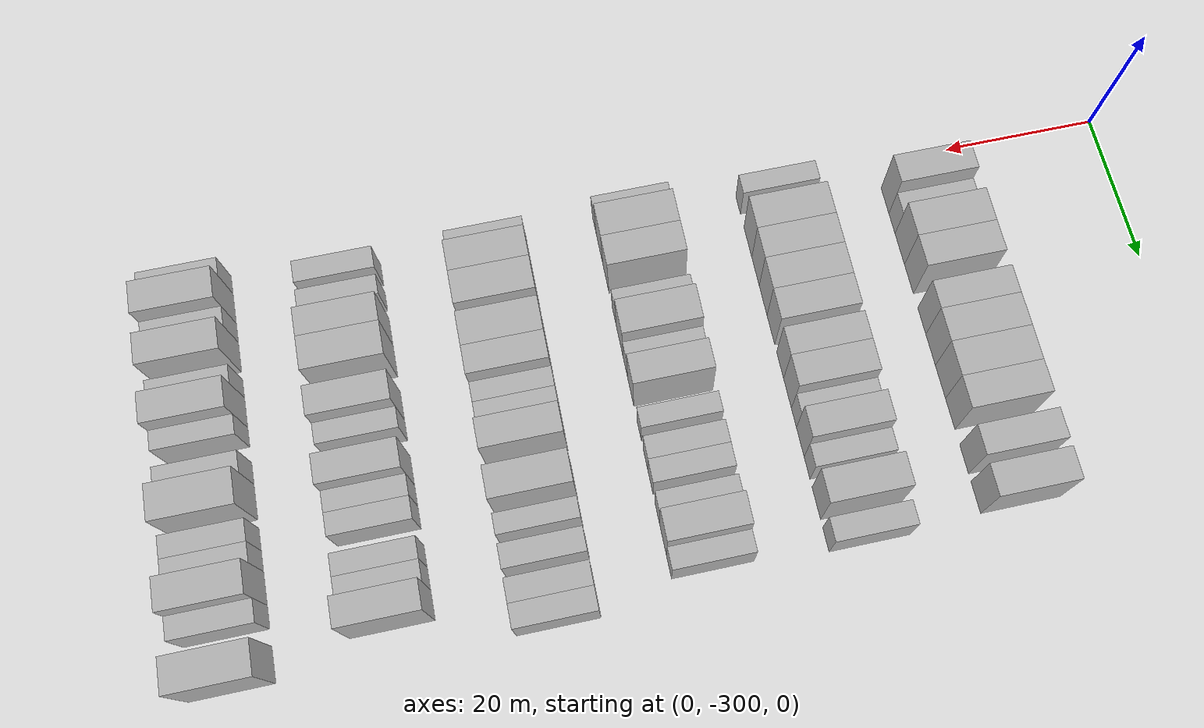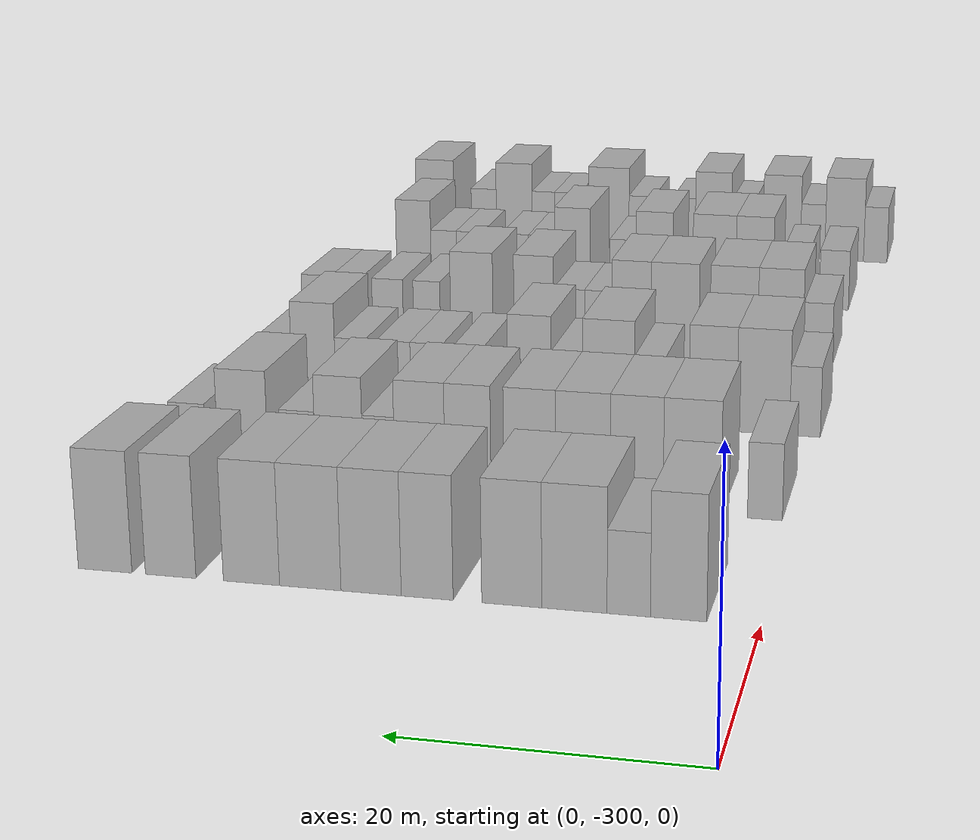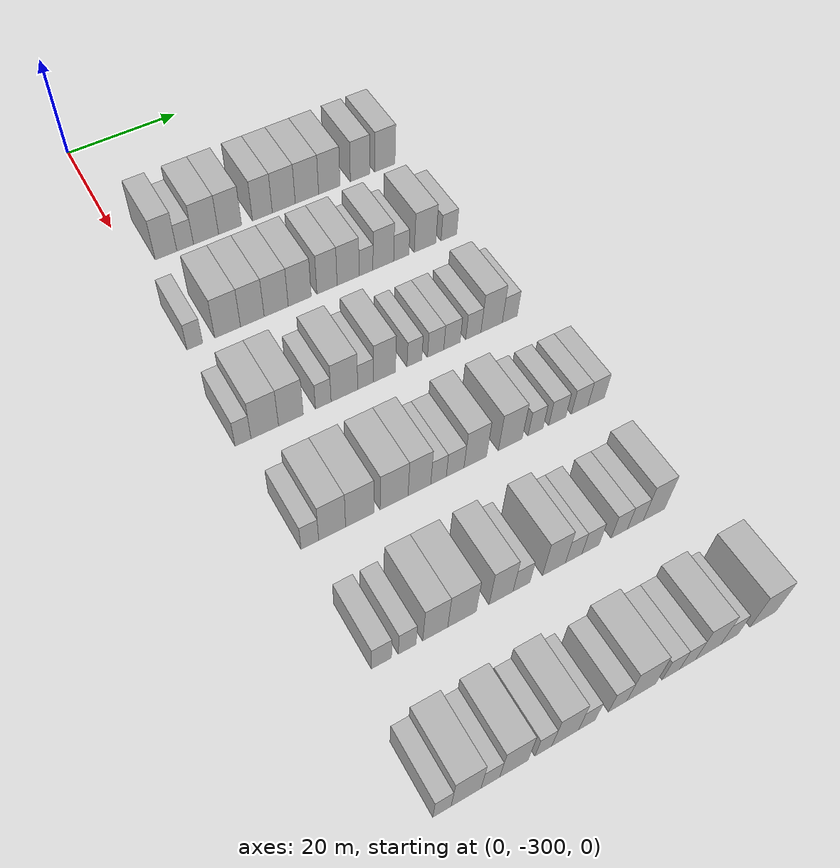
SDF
<sdf version="1.6">
 <world name="default">
  <model name="building_11">
   <static>1</static>
   <pose>25.0000 -294.4763 0 0.000000 0.000000 0.000000</pose>
   <link name="link">
    <pose>0 0 4.50 0 0 0</pose>
    <collision name="collision"><geometry><box><size>10.0000 3.7892 9.0000</size></box></geometry></collision>
    <visual name="visual">
     <cast_shadows>0</cast_shadows>
     <geometry><box><size>10.0000 3.7892 9.0000</size></box></geometry>
     <material>
      <script>
       <uri>model://HANNAS_wall/materials/scripts</uri>
       <uri>model://HANNAS_wall/materials/textures</uri>
       <name>vrc/HANNAS_wall</name>
      </script>
     </material>
    </visual>
   </link>
  </model>
  <model name="building_12">
   <static>1</static>
   <pose>25.0000 -291.1139 0 0.000000 0.000000 0.000000</pose>
   <link name="link">
    <pose>0 0 3.00 0 0 0</pose>
    <collision name="collision"><geometry><box><size>10.0000 2.9355 6.0000</size></box></geometry></collision>
    <visual name="visual">
     <cast_shadows>0</cast_shadows>
     <geometry><box><size>10.0000 2.9355 6.0000</size></box></geometry>
     <material>
      <script>
       <uri>model://HANNAS_wall/materials/scripts</uri>
       <uri>model://HANNAS_wall/materials/textures</uri>
       <name>vrc/HANNAS_wall</name>
      </script>
     </material>
    </visual>
   </link>
  </model>
  <model name="building_13">
   <static>1</static>
   <pose>25.0000 -287.4135 0 0.000000 0.000000 0.000000</pose>
   <link name="link">
    <pose>0 0 4.50 0 0 0</pose>
    <collision name="collision"><geometry><box><size>10.0000 4.4653 9.0000</size></box></geometry></collision>
    <visual name="visual">
     <cast_shadows>0</cast_shadows>
     <geometry><box><size>10.0000 4.4653 9.0000</size></box></geometry>
     <material>
      <script>
       <uri>model://HANNAS_wall/materials/scripts</uri>
       <uri>model://HANNAS_wall/materials/textures</uri>
       <name>vrc/HANNAS_wall</name>
      </script>
     </material>
    </visual>
   </link>
  </model>
  <model name="building_14">
   <static>1</static>
   <pose>25.0000 -283.1063 0 0.000000 0.000000 0.000000</pose>
   <link name="link">
    <pose>0 0 4.50 0 0 0</pose>
    <collision name="collision"><geometry><box><size>10.0000 4.1491 9.0000</size></box></geometry></collision>
    <visual name="visual">
     <cast_shadows>0</cast_shadows>
     <geometry><box><size>10.0000 4.1491 9.0000</size></box></geometry>
     <material>
      <script>
       <uri>model://HANNAS_wall/materials/scripts</uri>
       <uri>model://HANNAS_wall/materials/textures</uri>
       <name>vrc/HANNAS_wall</name>
      </script>
     </material>
    </visual>
   </link>
  </model>
  <model name="building_15">
   <static>1</static>
   <pose>25.0000 -277.2079 0 0.000000 0.000000 0.000000</pose>
   <link name="link">
    <pose>0 0 4.50 0 0 0</pose>
    <collision name="collision"><geometry><box><size>10.0000 3.6478 9.0000</size></box></geometry></collision>
    <visual name="visual">
     <cast_shadows>0</cast_shadows>
     <geometry><box><size>10.0000 3.6478 9.0000</size></box></geometry>
     <material>
      <script>
       <uri>model://HANNAS_wall/materials/scripts</uri>
       <uri>model://HANNAS_wall/materials/textures</uri>
       <name>vrc/HANNAS_wall</name>
      </script>
     </material>
    </visual>
   </link>
  </model>
  <model name="building_16">
   <static>1</static>
   <pose>25.0000 -273.2467 0 0.000000 0.000000 0.000000</pose>
   <link name="link">
    <pose>0 0 4.50 0 0 0</pose>
    <collision name="collision"><geometry><box><size>10.0000 4.2746 9.0000</size></box></geometry></collision>
    <visual name="visual">
     <cast_shadows>0</cast_shadows>
     <geometry><box><size>10.0000 4.2746 9.0000</size></box></geometry>
     <material>
      <script>
       <uri>model://HANNAS_wall/materials/scripts</uri>
       <uri>model://HANNAS_wall/materials/textures</uri>
       <name>vrc/HANNAS_wall</name>
      </script>
     </material>
    </visual>
   </link>
  </model>
  <model name="building_17">
   <static>1</static>
   <pose>25.0000 -268.9025 0 0.000000 0.000000 0.000000</pose>
   <link name="link">
    <pose>0 0 4.50 0 0 0</pose>
    <collision name="collision"><geometry><box><size>10.0000 4.4139 9.0000</size></box></geometry></collision>
    <visual name="visual">
     <cast_shadows>0</cast_shadows>
     <geometry><box><size>10.0000 4.4139 9.0000</size></box></geometry>
     <material>
      <script>
       <uri>model://HANNAS_wall/materials/scripts</uri>
       <uri>model://HANNAS_wall/materials/textures</uri>
       <name>vrc/HANNAS_wall</name>
      </script>
     </material>
    </visual>
   </link>
  </model>
  <model name="building_18">
   <static>1</static>
   <pose>25.0000 -264.6550 0 0.000000 0.000000 0.000000</pose>
   <link name="link">
    <pose>0 0 4.50 0 0 0</pose>
    <collision name="collision"><geometry><box><size>10.0000 4.0811 9.0000</size></box></geometry></collision>
    <visual name="visual">
     <cast_shadows>0</cast_shadows>
     <geometry><box><size>10.0000 4.0811 9.0000</size></box></geometry>
     <material>
      <script>
       <uri>model://HANNAS_wall/materials/scripts</uri>
       <uri>model://HANNAS_wall/materials/textures</uri>
       <name>vrc/HANNAS_wall</name>
      </script>
     </material>
    </visual>
   </link>
  </model>
  <model name="building_19">
   <static>1</static>
   <pose>25.0000 -258.7499 0 0.000000 0.000000 0.000000</pose>
   <link name="link">
    <pose>0 0 4.50 0 0 0</pose>
    <collision name="collision"><geometry><box><size>10.0000 3.7290 9.0000</size></box></geometry></collision>
    <visual name="visual">
     <cast_shadows>0</cast_shadows>
     <geometry><box><size>10.0000 3.7290 9.0000</size></box></geometry>
     <material>
      <script>
       <uri>model://HANNAS_wall/materials/scripts</uri>
       <uri>model://HANNAS_wall/materials/textures</uri>
       <name>vrc/HANNAS_wall</name>
      </script>
     </material>
    </visual>
   </link>
  </model>
  <model name="building_20">
   <static>1</static>
   <pose>25.0000 -253.8851 0 0.000000 0.000000 0.000000</pose>
   <link name="link">
    <pose>0 0 4.50 0 0 0</pose>
    <collision name="collision"><geometry><box><size>10.0000 4.0006 9.0000</size></box></geometry></collision>
    <visual name="visual">
     <cast_shadows>0</cast_shadows>
     <geometry><box><size>10.0000 4.0006 9.0000</size></box></geometry>
     <material>
      <script>
       <uri>model://HANNAS_wall/materials/scripts</uri>
       <uri>model://HANNAS_wall/materials/textures</uri>
       <name>vrc/HANNAS_wall</name>
      </script>
     </material>
    </visual>
   </link>
  </model>
  <model name="building_190">
   <static>1</static>
   <pose>44.0000 -297.9069 0 0.000000 0.000000 0.000000</pose>
   <link name="link">
    <pose>0 0 3.00 0 0 0</pose>
    <collision name="collision"><geometry><box><size>10.0000 2.6059 6.0000</size></box></geometry></collision>
    <visual name="visual">
     <cast_shadows>0</cast_shadows>
     <geometry><box><size>10.0000 2.6059 6.0000</size></box></geometry>
     <material>
      <script>
       <uri>model://HANNAS_wall/materials/scripts</uri>
       <uri>model://HANNAS_wall/materials/textures</uri>
       <name>vrc/HANNAS_wall</name>
      </script>
     </material>
    </visual>
   </link>
  </model>
  <model name="building_191">
   <static>1</static>
   <pose>44.0000 -292.4246 0 0.000000 0.000000 0.000000</pose>
   <link name="link">
    <pose>0 0 4.50 0 0 0</pose>
    <collision name="collision"><geometry><box><size>10.0000 4.3587 9.0000</size></box></geometry></collision>
    <visual name="visual">
     <cast_shadows>0</cast_shadows>
     <geometry><box><size>10.0000 4.3587 9.0000</size></box></geometry>
     <material>
      <script>
       <uri>model://HANNAS_wall/materials/scripts</uri>
       <uri>model://HANNAS_wall/materials/textures</uri>
       <name>vrc/HANNAS_wall</name>
      </script>
     </material>
    </visual>
   </link>
  </model>
  <model name="building_192">
   <static>1</static>
   <pose>44.0000 -288.2241 0 0.000000 0.000000 0.000000</pose>
   <link name="link">
    <pose>0 0 4.50 0 0 0</pose>
    <collision name="collision"><geometry><box><size>10.0000 4.0423 9.0000</size></box></geometry></collision>
    <visual name="visual">
     <cast_shadows>0</cast_shadows>
     <geometry><box><size>10.0000 4.0423 9.0000</size></box></geometry>
     <material>
      <script>
       <uri>model://HANNAS_wall/materials/scripts</uri>
       <uri>model://HANNAS_wall/materials/textures</uri>
       <name>vrc/HANNAS_wall</name>
      </script>
     </material>
    </visual>
   </link>
  </model>
  <model name="building_193">
   <static>1</static>
   <pose>44.0000 -284.1185 0 0.000000 0.000000 0.000000</pose>
   <link name="link">
    <pose>0 0 4.50 0 0 0</pose>
    <collision name="collision"><geometry><box><size>10.0000 4.1690 9.0000</size></box></geometry></collision>
    <visual name="visual">
     <cast_shadows>0</cast_shadows>
     <geometry><box><size>10.0000 4.1690 9.0000</size></box></geometry>
     <material>
      <script>
       <uri>model://HANNAS_wall/materials/scripts</uri>
       <uri>model://HANNAS_wall/materials/textures</uri>
       <name>vrc/HANNAS_wall</name>
      </script>
     </material>
    </visual>
   </link>
  </model>
  <model name="building_194">
   <static>1</static>
   <pose>44.0000 -280.0185 0 0.000000 0.000000 0.000000</pose>
   <link name="link">
    <pose>0 0 4.50 0 0 0</pose>
    <collision name="collision"><geometry><box><size>10.0000 4.0310 9.0000</size></box></geometry></collision>
    <visual name="visual">
     <cast_shadows>0</cast_shadows>
     <geometry><box><size>10.0000 4.0310 9.0000</size></box></geometry>
     <material>
      <script>
       <uri>model://HANNAS_wall/materials/scripts</uri>
       <uri>model://HANNAS_wall/materials/textures</uri>
       <name>vrc/HANNAS_wall</name>
      </script>
     </material>
    </visual>
   </link>
  </model>
  <model name="building_195">
   <static>1</static>
   <pose>44.0000 -275.2022 0 0.000000 0.000000 0.000000</pose>
   <link name="link">
    <pose>0 0 4.50 0 0 0</pose>
    <collision name="collision"><geometry><box><size>10.0000 3.6016 9.0000</size></box></geometry></collision>
    <visual name="visual">
     <cast_shadows>0</cast_shadows>
     <geometry><box><size>10.0000 3.6016 9.0000</size></box></geometry>
     <material>
      <script>
       <uri>model://HANNAS_wall/materials/scripts</uri>
       <uri>model://HANNAS_wall/materials/textures</uri>
       <name>vrc/HANNAS_wall</name>
      </script>
     </material>
    </visual>
   </link>
  </model>
  <model name="building_196">
   <static>1</static>
   <pose>44.0000 -271.4170 0 0.000000 0.000000 0.000000</pose>
   <link name="link">
    <pose>0 0 4.50 0 0 0</pose>
    <collision name="collision"><geometry><box><size>10.0000 3.9689 9.0000</size></box></geometry></collision>
    <visual name="visual">
     <cast_shadows>0</cast_shadows>
     <geometry><box><size>10.0000 3.9689 9.0000</size></box></geometry>
     <material>
      <script>
       <uri>model://HANNAS_wall/materials/scripts</uri>
       <uri>model://HANNAS_wall/materials/textures</uri>
       <name>vrc/HANNAS_wall</name>
      </script>
     </material>
    </visual>
   </link>
  </model>
  <model name="building_197">
   <static>1</static>
   <pose>44.0000 -268.1687 0 0.000000 0.000000 0.000000</pose>
   <link name="link">
    <pose>0 0 3.00 0 0 0</pose>
    <collision name="collision"><geometry><box><size>10.0000 2.5276 6.0000</size></box></geometry></collision>
    <visual name="visual">
     <cast_shadows>0</cast_shadows>
     <geometry><box><size>10.0000 2.5276 6.0000</size></box></geometry>
     <material>
      <script>
       <uri>model://HANNAS_wall/materials/scripts</uri>
       <uri>model://HANNAS_wall/materials/textures</uri>
       <name>vrc/HANNAS_wall</name>
      </script>
     </material>
    </visual>
   </link>
  </model>
  <model name="building_198">
   <static>1</static>
   <pose>44.0000 -265.0015 0 0.000000 0.000000 0.000000</pose>
   <link name="link">
    <pose>0 0 4.50 0 0 0</pose>
    <collision name="collision"><geometry><box><size>10.0000 3.8068 9.0000</size></box></geometry></collision>
    <visual name="visual">
     <cast_shadows>0</cast_shadows>
     <geometry><box><size>10.0000 3.8068 9.0000</size></box></geometry>
     <material>
      <script>
       <uri>model://HANNAS_wall/materials/scripts</uri>
       <uri>model://HANNAS_wall/materials/textures</uri>
       <name>vrc/HANNAS_wall</name>
      </script>
     </material>
    </visual>
   </link>
  </model>
  <model name="building_199">
   <static>1</static>
   <pose>44.0000 -261.6796 0 0.000000 0.000000 0.000000</pose>
   <link name="link">
    <pose>0 0 3.00 0 0 0</pose>
    <collision name="collision"><geometry><box><size>10.0000 2.8369 6.0000</size></box></geometry></collision>
    <visual name="visual">
     <cast_shadows>0</cast_shadows>
     <geometry><box><size>10.0000 2.8369 6.0000</size></box></geometry>
     <material>
      <script>
       <uri>model://HANNAS_wall/materials/scripts</uri>
       <uri>model://HANNAS_wall/materials/textures</uri>
       <name>vrc/HANNAS_wall</name>
      </script>
     </material>
    </visual>
   </link>
  </model>
  <model name="building_200">
   <static>1</static>
   <pose>44.0000 -257.2208 0 0.000000 0.000000 0.000000</pose>
   <link name="link">
    <pose>0 0 4.50 0 0 0</pose>
    <collision name="collision"><geometry><box><size>10.0000 4.0807 9.0000</size></box></geometry></collision>
    <visual name="visual">
     <cast_shadows>0</cast_shadows>
     <geometry><box><size>10.0000 4.0807 9.0000</size></box></geometry>
     <material>
      <script>
       <uri>model://HANNAS_wall/materials/scripts</uri>
       <uri>model://HANNAS_wall/materials/textures</uri>
       <name>vrc/HANNAS_wall</name>
      </script>
     </material>
    </visual>
   </link>
  </model>
  <model name="building_201">
   <static>1</static>
   <pose>44.0000 -252.6934 0 0.000000 0.000000 0.000000</pose>
   <link name="link">
    <pose>0 0 3.00 0 0 0</pose>
    <collision name="collision"><geometry><box><size>10.0000 2.9742 6.0000</size></box></geometry></collision>
    <visual name="visual">
     <cast_shadows>0</cast_shadows>
     <geometry><box><size>10.0000 2.9742 6.0000</size></box></geometry>
     <material>
      <script>
       <uri>model://HANNAS_wall/materials/scripts</uri>
       <uri>model://HANNAS_wall/materials/textures</uri>
       <name>vrc/HANNAS_wall</name>
      </script>
     </material>
    </visual>
   </link>
  </model>
  <model name="building_360">
   <static>1</static>
   <pose>63.0000 -298.8897 0 0.000000 0.000000 0.000000</pose>
   <link name="link">
    <pose>0 0 3.00 0 0 0</pose>
    <collision name="collision"><geometry><box><size>10.0000 2.5405 6.0000</size></box></geometry></collision>
    <visual name="visual">
     <cast_shadows>0</cast_shadows>
     <geometry><box><size>10.0000 2.5405 6.0000</size></box></geometry>
     <material>
      <script>
       <uri>model://HANNAS_wall/materials/scripts</uri>
       <uri>model://HANNAS_wall/materials/textures</uri>
       <name>vrc/HANNAS_wall</name>
      </script>
     </material>
    </visual>
   </link>
  </model>
  <model name="building_361">
   <static>1</static>
   <pose>63.0000 -295.4206 0 0.000000 0.000000 0.000000</pose>
   <link name="link">
    <pose>0 0 4.50 0 0 0</pose>
    <collision name="collision"><geometry><box><size>10.0000 4.3977 9.0000</size></box></geometry></collision>
    <visual name="visual">
     <cast_shadows>0</cast_shadows>
     <geometry><box><size>10.0000 4.3977 9.0000</size></box></geometry>
     <material>
      <script>
       <uri>model://HANNAS_wall/materials/scripts</uri>
       <uri>model://HANNAS_wall/materials/textures</uri>
       <name>vrc/HANNAS_wall</name>
      </script>
     </material>
    </visual>
   </link>
  </model>
  <model name="building_362">
   <static>1</static>
   <pose>63.0000 -291.2165 0 0.000000 0.000000 0.000000</pose>
   <link name="link">
    <pose>0 0 4.50 0 0 0</pose>
    <collision name="collision"><geometry><box><size>10.0000 4.0105 9.0000</size></box></geometry></collision>
    <visual name="visual">
     <cast_shadows>0</cast_shadows>
     <geometry><box><size>10.0000 4.0105 9.0000</size></box></geometry>
     <material>
      <script>
       <uri>model://HANNAS_wall/materials/scripts</uri>
       <uri>model://HANNAS_wall/materials/textures</uri>
       <name>vrc/HANNAS_wall</name>
      </script>
     </material>
    </visual>
   </link>
  </model>
  <model name="building_363">
   <static>1</static>
   <pose>63.0000 -285.9216 0 0.000000 0.000000 0.000000</pose>
   <link name="link">
    <pose>0 0 3.00 0 0 0</pose>
    <collision name="collision"><geometry><box><size>10.0000 2.5793 6.0000</size></box></geometry></collision>
    <visual name="visual">
     <cast_shadows>0</cast_shadows>
     <geometry><box><size>10.0000 2.5793 6.0000</size></box></geometry>
     <material>
      <script>
       <uri>model://HANNAS_wall/materials/scripts</uri>
       <uri>model://HANNAS_wall/materials/textures</uri>
       <name>vrc/HANNAS_wall</name>
      </script>
     </material>
    </visual>
   </link>
  </model>
  <model name="building_364">
   <static>1</static>
   <pose>63.0000 -282.4137 0 0.000000 0.000000 0.000000</pose>
   <link name="link">
    <pose>0 0 4.50 0 0 0</pose>
    <collision name="collision"><geometry><box><size>10.0000 4.4365 9.0000</size></box></geometry></collision>
    <visual name="visual">
     <cast_shadows>0</cast_shadows>
     <geometry><box><size>10.0000 4.4365 9.0000</size></box></geometry>
     <material>
      <script>
       <uri>model://HANNAS_wall/materials/scripts</uri>
       <uri>model://HANNAS_wall/materials/textures</uri>
       <name>vrc/HANNAS_wall</name>
      </script>
     </material>
    </visual>
   </link>
  </model>
  <model name="building_365">
   <static>1</static>
   <pose>63.0000 -278.8677 0 0.000000 0.000000 0.000000</pose>
   <link name="link">
    <pose>0 0 3.00 0 0 0</pose>
    <collision name="collision"><geometry><box><size>10.0000 2.6555 6.0000</size></box></geometry></collision>
    <visual name="visual">
     <cast_shadows>0</cast_shadows>
     <geometry><box><size>10.0000 2.6555 6.0000</size></box></geometry>
     <material>
      <script>
       <uri>model://HANNAS_wall/materials/scripts</uri>
       <uri>model://HANNAS_wall/materials/textures</uri>
       <name>vrc/HANNAS_wall</name>
      </script>
     </material>
    </visual>
   </link>
  </model>
  <model name="building_366">
   <static>1</static>
   <pose>63.0000 -275.6477 0 0.000000 0.000000 0.000000</pose>
   <link name="link">
    <pose>0 0 4.50 0 0 0</pose>
    <collision name="collision"><geometry><box><size>10.0000 3.7845 9.0000</size></box></geometry></collision>
    <visual name="visual">
     <cast_shadows>0</cast_shadows>
     <geometry><box><size>10.0000 3.7845 9.0000</size></box></geometry>
     <material>
      <script>
       <uri>model://HANNAS_wall/materials/scripts</uri>
       <uri>model://HANNAS_wall/materials/textures</uri>
       <name>vrc/HANNAS_wall</name>
      </script>
     </material>
    </visual>
   </link>
  </model>
  <model name="building_367">
   <static>1</static>
   <pose>63.0000 -270.4620 0 0.000000 0.000000 0.000000</pose>
   <link name="link">
    <pose>0 0 3.00 0 0 0</pose>
    <collision name="collision"><geometry><box><size>10.0000 2.5870 6.0000</size></box></geometry></collision>
    <visual name="visual">
     <cast_shadows>0</cast_shadows>
     <geometry><box><size>10.0000 2.5870 6.0000</size></box></geometry>
     <material>
      <script>
       <uri>model://HANNAS_wall/materials/scripts</uri>
       <uri>model://HANNAS_wall/materials/textures</uri>
       <name>vrc/HANNAS_wall</name>
      </script>
     </material>
    </visual>
   </link>
  </model>
  <model name="building_368">
   <static>1</static>
   <pose>63.0000 -266.7367 0 0.000000 0.000000 0.000000</pose>
   <link name="link">
    <pose>0 0 3.00 0 0 0</pose>
    <collision name="collision"><geometry><box><size>10.0000 2.8637 6.0000</size></box></geometry></collision>
    <visual name="visual">
     <cast_shadows>0</cast_shadows>
     <geometry><box><size>10.0000 2.8637 6.0000</size></box></geometry>
     <material>
      <script>
       <uri>model://HANNAS_wall/materials/scripts</uri>
       <uri>model://HANNAS_wall/materials/textures</uri>
       <name>vrc/HANNAS_wall</name>
      </script>
     </material>
    </visual>
   </link>
  </model>
  <model name="building_369">
   <static>1</static>
   <pose>63.0000 -263.8430 0 0.000000 0.000000 0.000000</pose>
   <link name="link">
    <pose>0 0 3.00 0 0 0</pose>
    <collision name="collision"><geometry><box><size>10.0000 2.9236 6.0000</size></box></geometry></collision>
    <visual name="visual">
     <cast_shadows>0</cast_shadows>
     <geometry><box><size>10.0000 2.9236 6.0000</size></box></geometry>
     <material>
      <script>
       <uri>model://HANNAS_wall/materials/scripts</uri>
       <uri>model://HANNAS_wall/materials/textures</uri>
       <name>vrc/HANNAS_wall</name>
      </script>
     </material>
    </visual>
   </link>
  </model>
  <model name="building_370">
   <static>1</static>
   <pose>63.0000 -260.0084 0 0.000000 0.000000 0.000000</pose>
   <link name="link">
    <pose>0 0 3.00 0 0 0</pose>
    <collision name="collision"><geometry><box><size>10.0000 2.7458 6.0000</size></box></geometry></collision>
    <visual name="visual">
     <cast_shadows>0</cast_shadows>
     <geometry><box><size>10.0000 2.7458 6.0000</size></box></geometry>
     <material>
      <script>
       <uri>model://HANNAS_wall/materials/scripts</uri>
       <uri>model://HANNAS_wall/materials/textures</uri>
       <name>vrc/HANNAS_wall</name>
      </script>
     </material>
    </visual>
   </link>
  </model>
  <model name="building_371">
   <static>1</static>
   <pose>63.0000 -256.6826 0 0.000000 0.000000 0.000000</pose>
   <link name="link">
    <pose>0 0 4.50 0 0 0</pose>
    <collision name="collision"><geometry><box><size>10.0000 3.9058 9.0000</size></box></geometry></collision>
    <visual name="visual">
     <cast_shadows>0</cast_shadows>
     <geometry><box><size>10.0000 3.9058 9.0000</size></box></geometry>
     <material>
      <script>
       <uri>model://HANNAS_wall/materials/scripts</uri>
       <uri>model://HANNAS_wall/materials/textures</uri>
       <name>vrc/HANNAS_wall</name>
      </script>
     </material>
    </visual>
   </link>
  </model>
  <model name="building_372">
   <static>1</static>
   <pose>63.0000 -253.3596 0 0.000000 0.000000 0.000000</pose>
   <link name="link">
    <pose>0 0 3.00 0 0 0</pose>
    <collision name="collision"><geometry><box><size>10.0000 2.7403 6.0000</size></box></geometry></collision>
    <visual name="visual">
     <cast_shadows>0</cast_shadows>
     <geometry><box><size>10.0000 2.7403 6.0000</size></box></geometry>
     <material>
      <script>
       <uri>model://HANNAS_wall/materials/scripts</uri>
       <uri>model://HANNAS_wall/materials/textures</uri>
       <name>vrc/HANNAS_wall</name>
      </script>
     </material>
    </visual>
   </link>
  </model>
  <model name="building_530">
   <static>1</static>
   <pose>82.0000 -298.0099 0 0.000000 0.000000 0.000000</pose>
   <link name="link">
    <pose>0 0 3.00 0 0 0</pose>
    <collision name="collision"><geometry><box><size>10.0000 2.6779 6.0000</size></box></geometry></collision>
    <visual name="visual">
     <cast_shadows>0</cast_shadows>
     <geometry><box><size>10.0000 2.6779 6.0000</size></box></geometry>
     <material>
      <script>
       <uri>model://HANNAS_wall/materials/scripts</uri>
       <uri>model://HANNAS_wall/materials/textures</uri>
       <name>vrc/HANNAS_wall</name>
      </script>
     </material>
    </visual>
   </link>
  </model>
  <model name="building_531">
   <static>1</static>
   <pose>82.0000 -294.6127 0 0.000000 0.000000 0.000000</pose>
   <link name="link">
    <pose>0 0 4.50 0 0 0</pose>
    <collision name="collision"><geometry><box><size>10.0000 4.1164 9.0000</size></box></geometry></collision>
    <visual name="visual">
     <cast_shadows>0</cast_shadows>
     <geometry><box><size>10.0000 4.1164 9.0000</size></box></geometry>
     <material>
      <script>
       <uri>model://HANNAS_wall/materials/scripts</uri>
       <uri>model://HANNAS_wall/materials/textures</uri>
       <name>vrc/HANNAS_wall</name>
      </script>
     </material>
    </visual>
   </link>
  </model>
  <model name="building_532">
   <static>1</static>
   <pose>82.0000 -290.3616 0 0.000000 0.000000 0.000000</pose>
   <link name="link">
    <pose>0 0 4.50 0 0 0</pose>
    <collision name="collision"><geometry><box><size>10.0000 4.3859 9.0000</size></box></geometry></collision>
    <visual name="visual">
     <cast_shadows>0</cast_shadows>
     <geometry><box><size>10.0000 4.3859 9.0000</size></box></geometry>
     <material>
      <script>
       <uri>model://HANNAS_wall/materials/scripts</uri>
       <uri>model://HANNAS_wall/materials/textures</uri>
       <name>vrc/HANNAS_wall</name>
      </script>
     </material>
    </visual>
   </link>
  </model>
  <model name="building_533">
   <static>1</static>
   <pose>82.0000 -284.9443 0 0.000000 0.000000 0.000000</pose>
   <link name="link">
    <pose>0 0 4.50 0 0 0</pose>
    <collision name="collision"><geometry><box><size>10.0000 4.4486 9.0000</size></box></geometry></collision>
    <visual name="visual">
     <cast_shadows>0</cast_shadows>
     <geometry><box><size>10.0000 4.4486 9.0000</size></box></geometry>
     <material>
      <script>
       <uri>model://HANNAS_wall/materials/scripts</uri>
       <uri>model://HANNAS_wall/materials/textures</uri>
       <name>vrc/HANNAS_wall</name>
      </script>
     </material>
    </visual>
   </link>
  </model>
  <model name="building_534">
   <static>1</static>
   <pose>82.0000 -280.8915 0 0.000000 0.000000 0.000000</pose>
   <link name="link">
    <pose>0 0 4.50 0 0 0</pose>
    <collision name="collision"><geometry><box><size>10.0000 3.6572 9.0000</size></box></geometry></collision>
    <visual name="visual">
     <cast_shadows>0</cast_shadows>
     <geometry><box><size>10.0000 3.6572 9.0000</size></box></geometry>
     <material>
      <script>
       <uri>model://HANNAS_wall/materials/scripts</uri>
       <uri>model://HANNAS_wall/materials/textures</uri>
       <name>vrc/HANNAS_wall</name>
      </script>
     </material>
    </visual>
   </link>
  </model>
  <model name="building_535">
   <static>1</static>
   <pose>82.0000 -277.7902 0 0.000000 0.000000 0.000000</pose>
   <link name="link">
    <pose>0 0 3.00 0 0 0</pose>
    <collision name="collision"><geometry><box><size>10.0000 2.5454 6.0000</size></box></geometry></collision>
    <visual name="visual">
     <cast_shadows>0</cast_shadows>
     <geometry><box><size>10.0000 2.5454 6.0000</size></box></geometry>
     <material>
      <script>
       <uri>model://HANNAS_wall/materials/scripts</uri>
       <uri>model://HANNAS_wall/materials/textures</uri>
       <name>vrc/HANNAS_wall</name>
      </script>
     </material>
    </visual>
   </link>
  </model>
  <model name="building_536">
   <static>1</static>
   <pose>82.0000 -275.0602 0 0.000000 0.000000 0.000000</pose>
   <link name="link">
    <pose>0 0 3.00 0 0 0</pose>
    <collision name="collision"><geometry><box><size>10.0000 2.9146 6.0000</size></box></geometry></collision>
    <visual name="visual">
     <cast_shadows>0</cast_shadows>
     <geometry><box><size>10.0000 2.9146 6.0000</size></box></geometry>
     <material>
      <script>
       <uri>model://HANNAS_wall/materials/scripts</uri>
       <uri>model://HANNAS_wall/materials/textures</uri>
       <name>vrc/HANNAS_wall</name>
      </script>
     </material>
    </visual>
   </link>
  </model>
  <model name="building_537">
   <static>1</static>
   <pose>82.0000 -271.7174 0 0.000000 0.000000 0.000000</pose>
   <link name="link">
    <pose>0 0 4.50 0 0 0</pose>
    <collision name="collision"><geometry><box><size>10.0000 3.7710 9.0000</size></box></geometry></collision>
    <visual name="visual">
     <cast_shadows>0</cast_shadows>
     <geometry><box><size>10.0000 3.7710 9.0000</size></box></geometry>
     <material>
      <script>
       <uri>model://HANNAS_wall/materials/scripts</uri>
       <uri>model://HANNAS_wall/materials/textures</uri>
       <name>vrc/HANNAS_wall</name>
      </script>
     </material>
    </visual>
   </link>
  </model>
  <model name="building_538">
   <static>1</static>
   <pose>82.0000 -265.8023 0 0.000000 0.000000 0.000000</pose>
   <link name="link">
    <pose>0 0 4.50 0 0 0</pose>
    <collision name="collision"><geometry><box><size>10.0000 4.0591 9.0000</size></box></geometry></collision>
    <visual name="visual">
     <cast_shadows>0</cast_shadows>
     <geometry><box><size>10.0000 4.0591 9.0000</size></box></geometry>
     <material>
      <script>
       <uri>model://HANNAS_wall/materials/scripts</uri>
       <uri>model://HANNAS_wall/materials/textures</uri>
       <name>vrc/HANNAS_wall</name>
      </script>
     </material>
    </visual>
   </link>
  </model>
  <model name="building_539">
   <static>1</static>
   <pose>82.0000 -261.4778 0 0.000000 0.000000 0.000000</pose>
   <link name="link">
    <pose>0 0 3.00 0 0 0</pose>
    <collision name="collision"><geometry><box><size>10.0000 2.5900 6.0000</size></box></geometry></collision>
    <visual name="visual">
     <cast_shadows>0</cast_shadows>
     <geometry><box><size>10.0000 2.5900 6.0000</size></box></geometry>
     <material>
      <script>
       <uri>model://HANNAS_wall/materials/scripts</uri>
       <uri>model://HANNAS_wall/materials/textures</uri>
       <name>vrc/HANNAS_wall</name>
      </script>
     </material>
    </visual>
   </link>
  </model>
  <model name="building_540">
   <static>1</static>
   <pose>82.0000 -257.6852 0 0.000000 0.000000 0.000000</pose>
   <link name="link">
    <pose>0 0 3.00 0 0 0</pose>
    <collision name="collision"><geometry><box><size>10.0000 2.9952 6.0000</size></box></geometry></collision>
    <visual name="visual">
     <cast_shadows>0</cast_shadows>
     <geometry><box><size>10.0000 2.9952 6.0000</size></box></geometry>
     <material>
      <script>
       <uri>model://HANNAS_wall/materials/scripts</uri>
       <uri>model://HANNAS_wall/materials/textures</uri>
       <name>vrc/HANNAS_wall</name>
      </script>
     </material>
    </visual>
   </link>
  </model>
  <model name="building_541">
   <static>1</static>
   <pose>82.0000 -253.7092 0 0.000000 0.000000 0.000000</pose>
   <link name="link">
    <pose>0 0 3.00 0 0 0</pose>
    <collision name="collision"><geometry><box><size>10.0000 2.9568 6.0000</size></box></geometry></collision>
    <visual name="visual">
     <cast_shadows>0</cast_shadows>
     <geometry><box><size>10.0000 2.9568 6.0000</size></box></geometry>
     <material>
      <script>
       <uri>model://HANNAS_wall/materials/scripts</uri>
       <uri>model://HANNAS_wall/materials/textures</uri>
       <name>vrc/HANNAS_wall</name>
      </script>
     </material>
    </visual>
   </link>
  </model>
  <model name="building_542">
   <static>1</static>
   <pose>82.0000 -250.7577 0 0.000000 0.000000 0.000000</pose>
   <link name="link">
    <pose>0 0 3.00 0 0 0</pose>
    <collision name="collision"><geometry><box><size>10.0000 2.9462 6.0000</size></box></geometry></collision>
    <visual name="visual">
     <cast_shadows>0</cast_shadows>
     <geometry><box><size>10.0000 2.9462 6.0000</size></box></geometry>
     <material>
      <script>
       <uri>model://HANNAS_wall/materials/scripts</uri>
       <uri>model://HANNAS_wall/materials/textures</uri>
       <name>vrc/HANNAS_wall</name>
      </script>
     </material>
    </visual>
   </link>
  </model>
  <model name="building_704">
   <static>1</static>
   <pose>101.0000 -297.7565 0 0.000000 0.000000 0.000000</pose>
   <link name="link">
    <pose>0 0 3.00 0 0 0</pose>
    <collision name="collision"><geometry><box><size>10.0000 2.8995 6.0000</size></box></geometry></collision>
    <visual name="visual">
     <cast_shadows>0</cast_shadows>
     <geometry><box><size>10.0000 2.8995 6.0000</size></box></geometry>
     <material>
      <script>
       <uri>model://HANNAS_wall/materials/scripts</uri>
       <uri>model://HANNAS_wall/materials/textures</uri>
       <name>vrc/HANNAS_wall</name>
      </script>
     </material>
    </visual>
   </link>
  </model>
  <model name="building_705">
   <static>1</static>
   <pose>101.0000 -294.0056 0 0.000000 0.000000 0.000000</pose>
   <link name="link">
    <pose>0 0 3.00 0 0 0</pose>
    <collision name="collision"><geometry><box><size>10.0000 2.6024 6.0000</size></box></geometry></collision>
    <visual name="visual">
     <cast_shadows>0</cast_shadows>
     <geometry><box><size>10.0000 2.6024 6.0000</size></box></geometry>
     <material>
      <script>
       <uri>model://HANNAS_wall/materials/scripts</uri>
       <uri>model://HANNAS_wall/materials/textures</uri>
       <name>vrc/HANNAS_wall</name>
      </script>
     </material>
    </visual>
   </link>
  </model>
  <model name="building_706">
   <static>1</static>
   <pose>101.0000 -289.8347 0 0.000000 0.000000 0.000000</pose>
   <link name="link">
    <pose>0 0 4.50 0 0 0</pose>
    <collision name="collision"><geometry><box><size>10.0000 3.7393 9.0000</size></box></geometry></collision>
    <visual name="visual">
     <cast_shadows>0</cast_shadows>
     <geometry><box><size>10.0000 3.7393 9.0000</size></box></geometry>
     <material>
      <script>
       <uri>model://HANNAS_wall/materials/scripts</uri>
       <uri>model://HANNAS_wall/materials/textures</uri>
       <name>vrc/HANNAS_wall</name>
      </script>
     </material>
    </visual>
   </link>
  </model>
  <model name="building_707">
   <static>1</static>
   <pose>101.0000 -285.8051 0 0.000000 0.000000 0.000000</pose>
   <link name="link">
    <pose>0 0 4.50 0 0 0</pose>
    <collision name="collision"><geometry><box><size>10.0000 4.3200 9.0000</size></box></geometry></collision>
    <visual name="visual">
     <cast_shadows>0</cast_shadows>
     <geometry><box><size>10.0000 4.3200 9.0000</size></box></geometry>
     <material>
      <script>
       <uri>model://HANNAS_wall/materials/scripts</uri>
       <uri>model://HANNAS_wall/materials/textures</uri>
       <name>vrc/HANNAS_wall</name>
      </script>
     </material>
    </visual>
   </link>
  </model>
  <model name="building_708">
   <static>1</static>
   <pose>101.0000 -279.7821 0 0.000000 0.000000 0.000000</pose>
   <link name="link">
    <pose>0 0 4.50 0 0 0</pose>
    <collision name="collision"><geometry><box><size>10.0000 3.7260 9.0000</size></box></geometry></collision>
    <visual name="visual">
     <cast_shadows>0</cast_shadows>
     <geometry><box><size>10.0000 3.7260 9.0000</size></box></geometry>
     <material>
      <script>
       <uri>model://HANNAS_wall/materials/scripts</uri>
       <uri>model://HANNAS_wall/materials/textures</uri>
       <name>vrc/HANNAS_wall</name>
      </script>
     </material>
    </visual>
   </link>
  </model>
  <model name="building_709">
   <static>1</static>
   <pose>101.0000 -276.5863 0 0.000000 0.000000 0.000000</pose>
   <link name="link">
    <pose>0 0 3.00 0 0 0</pose>
    <collision name="collision"><geometry><box><size>10.0000 2.6657 6.0000</size></box></geometry></collision>
    <visual name="visual">
     <cast_shadows>0</cast_shadows>
     <geometry><box><size>10.0000 2.6657 6.0000</size></box></geometry>
     <material>
      <script>
       <uri>model://HANNAS_wall/materials/scripts</uri>
       <uri>model://HANNAS_wall/materials/textures</uri>
       <name>vrc/HANNAS_wall</name>
      </script>
     </material>
    </visual>
   </link>
  </model>
  <model name="building_710">
   <static>1</static>
   <pose>101.0000 -271.4059 0 0.000000 0.000000 0.000000</pose>
   <link name="link">
    <pose>0 0 4.50 0 0 0</pose>
    <collision name="collision"><geometry><box><size>10.0000 3.6951 9.0000</size></box></geometry></collision>
    <visual name="visual">
     <cast_shadows>0</cast_shadows>
     <geometry><box><size>10.0000 3.6951 9.0000</size></box></geometry>
     <material>
      <script>
       <uri>model://HANNAS_wall/materials/scripts</uri>
       <uri>model://HANNAS_wall/materials/textures</uri>
       <name>vrc/HANNAS_wall</name>
      </script>
     </material>
    </visual>
   </link>
  </model>
  <model name="building_711">
   <static>1</static>
   <pose>101.0000 -268.2254 0 0.000000 0.000000 0.000000</pose>
   <link name="link">
    <pose>0 0 3.00 0 0 0</pose>
    <collision name="collision"><geometry><box><size>10.0000 2.6658 6.0000</size></box></geometry></collision>
    <visual name="visual">
     <cast_shadows>0</cast_shadows>
     <geometry><box><size>10.0000 2.6658 6.0000</size></box></geometry>
     <material>
      <script>
       <uri>model://HANNAS_wall/materials/scripts</uri>
       <uri>model://HANNAS_wall/materials/textures</uri>
       <name>vrc/HANNAS_wall</name>
      </script>
     </material>
    </visual>
   </link>
  </model>
  <model name="building_712">
   <static>1</static>
   <pose>101.0000 -265.4802 0 0.000000 0.000000 0.000000</pose>
   <link name="link">
    <pose>0 0 3.00 0 0 0</pose>
    <collision name="collision"><geometry><box><size>10.0000 2.8247 6.0000</size></box></geometry></collision>
    <visual name="visual">
     <cast_shadows>0</cast_shadows>
     <geometry><box><size>10.0000 2.8247 6.0000</size></box></geometry>
     <material>
      <script>
       <uri>model://HANNAS_wall/materials/scripts</uri>
       <uri>model://HANNAS_wall/materials/textures</uri>
       <name>vrc/HANNAS_wall</name>
      </script>
     </material>
    </visual>
   </link>
  </model>
  <model name="building_713">
   <static>1</static>
   <pose>101.0000 -260.7127 0 0.000000 0.000000 0.000000</pose>
   <link name="link">
    <pose>0 0 3.00 0 0 0</pose>
    <collision name="collision"><geometry><box><size>10.0000 2.7102 6.0000</size></box></geometry></collision>
    <visual name="visual">
     <cast_shadows>0</cast_shadows>
     <geometry><box><size>10.0000 2.7102 6.0000</size></box></geometry>
     <material>
      <script>
       <uri>model://HANNAS_wall/materials/scripts</uri>
       <uri>model://HANNAS_wall/materials/textures</uri>
       <name>vrc/HANNAS_wall</name>
      </script>
     </material>
    </visual>
   </link>
  </model>
  <model name="building_714">
   <static>1</static>
   <pose>101.0000 -258.0163 0 0.000000 0.000000 0.000000</pose>
   <link name="link">
    <pose>0 0 3.00 0 0 0</pose>
    <collision name="collision"><geometry><box><size>10.0000 2.6828 6.0000</size></box></geometry></collision>
    <visual name="visual">
     <cast_shadows>0</cast_shadows>
     <geometry><box><size>10.0000 2.6828 6.0000</size></box></geometry>
     <material>
      <script>
       <uri>model://HANNAS_wall/materials/scripts</uri>
       <uri>model://HANNAS_wall/materials/textures</uri>
       <name>vrc/HANNAS_wall</name>
      </script>
     </material>
    </visual>
   </link>
  </model>
  <model name="building_715">
   <static>1</static>
   <pose>101.0000 -254.8512 0 0.000000 0.000000 0.000000</pose>
   <link name="link">
    <pose>0 0 4.50 0 0 0</pose>
    <collision name="collision"><geometry><box><size>10.0000 3.6474 9.0000</size></box></geometry></collision>
    <visual name="visual">
     <cast_shadows>0</cast_shadows>
     <geometry><box><size>10.0000 3.6474 9.0000</size></box></geometry>
     <material>
      <script>
       <uri>model://HANNAS_wall/materials/scripts</uri>
       <uri>model://HANNAS_wall/materials/textures</uri>
       <name>vrc/HANNAS_wall</name>
      </script>
     </material>
    </visual>
   </link>
  </model>
  <model name="building_879">
   <static>1</static>
   <pose>120.0000 -300.4320 0 0.000000 0.000000 0.000000</pose>
   <link name="link">
    <pose>0 0 3.00 0 0 0</pose>
    <collision name="collision"><geometry><box><size>10.0000 2.4913 6.0000</size></box></geometry></collision>
    <visual name="visual">
     <cast_shadows>0</cast_shadows>
     <geometry><box><size>10.0000 2.4913 6.0000</size></box></geometry>
     <material>
      <script>
       <uri>model://HANNAS_wall/materials/scripts</uri>
       <uri>model://HANNAS_wall/materials/textures</uri>
       <name>vrc/HANNAS_wall</name>
      </script>
     </material>
    </visual>
   </link>
  </model>
  <model name="building_880">
   <static>1</static>
   <pose>120.0000 -297.1130 0 0.000000 0.000000 0.000000</pose>
   <link name="link">
    <pose>0 0 4.50 0 0 0</pose>
    <collision name="collision"><geometry><box><size>10.0000 4.1466 9.0000</size></box></geometry></collision>
    <visual name="visual">
     <cast_shadows>0</cast_shadows>
     <geometry><box><size>10.0000 4.1466 9.0000</size></box></geometry>
     <material>
      <script>
       <uri>model://HANNAS_wall/materials/scripts</uri>
       <uri>model://HANNAS_wall/materials/textures</uri>
       <name>vrc/HANNAS_wall</name>
      </script>
     </material>
    </visual>
   </link>
  </model>
  <model name="building_881">
   <static>1</static>
   <pose>120.0000 -293.7291 0 0.000000 0.000000 0.000000</pose>
   <link name="link">
    <pose>0 0 3.00 0 0 0</pose>
    <collision name="collision"><geometry><box><size>10.0000 2.6212 6.0000</size></box></geometry></collision>
    <visual name="visual">
     <cast_shadows>0</cast_shadows>
     <geometry><box><size>10.0000 2.6212 6.0000</size></box></geometry>
     <material>
      <script>
       <uri>model://HANNAS_wall/materials/scripts</uri>
       <uri>model://HANNAS_wall/materials/textures</uri>
       <name>vrc/HANNAS_wall</name>
      </script>
     </material>
    </visual>
   </link>
  </model>
  <model name="building_882">
   <static>1</static>
   <pose>120.0000 -290.3911 0 0.000000 0.000000 0.000000</pose>
   <link name="link">
    <pose>0 0 4.50 0 0 0</pose>
    <collision name="collision"><geometry><box><size>10.0000 4.0546 9.0000</size></box></geometry></collision>
    <visual name="visual">
     <cast_shadows>0</cast_shadows>
     <geometry><box><size>10.0000 4.0546 9.0000</size></box></geometry>
     <material>
      <script>
       <uri>model://HANNAS_wall/materials/scripts</uri>
       <uri>model://HANNAS_wall/materials/textures</uri>
       <name>vrc/HANNAS_wall</name>
      </script>
     </material>
    </visual>
   </link>
  </model>
  <model name="building_883">
   <static>1</static>
   <pose>120.0000 -286.1433 0 0.000000 0.000000 0.000000</pose>
   <link name="link">
    <pose>0 0 3.00 0 0 0</pose>
    <collision name="collision"><geometry><box><size>10.0000 2.4411 6.0000</size></box></geometry></collision>
    <visual name="visual">
     <cast_shadows>0</cast_shadows>
     <geometry><box><size>10.0000 2.4411 6.0000</size></box></geometry>
     <material>
      <script>
       <uri>model://HANNAS_wall/materials/scripts</uri>
       <uri>model://HANNAS_wall/materials/textures</uri>
       <name>vrc/HANNAS_wall</name>
      </script>
     </material>
    </visual>
   </link>
  </model>
  <model name="building_884">
   <static>1</static>
   <pose>120.0000 -282.9638 0 0.000000 0.000000 0.000000</pose>
   <link name="link">
    <pose>0 0 4.50 0 0 0</pose>
    <collision name="collision"><geometry><box><size>10.0000 3.9179 9.0000</size></box></geometry></collision>
    <visual name="visual">
     <cast_shadows>0</cast_shadows>
     <geometry><box><size>10.0000 3.9179 9.0000</size></box></geometry>
     <material>
      <script>
       <uri>model://HANNAS_wall/materials/scripts</uri>
       <uri>model://HANNAS_wall/materials/textures</uri>
       <name>vrc/HANNAS_wall</name>
      </script>
     </material>
    </visual>
   </link>
  </model>
  <model name="building_885">
   <static>1</static>
   <pose>120.0000 -279.7436 0 0.000000 0.000000 0.000000</pose>
   <link name="link">
    <pose>0 0 3.00 0 0 0</pose>
    <collision name="collision"><geometry><box><size>10.0000 2.5224 6.0000</size></box></geometry></collision>
    <visual name="visual">
     <cast_shadows>0</cast_shadows>
     <geometry><box><size>10.0000 2.5224 6.0000</size></box></geometry>
     <material>
      <script>
       <uri>model://HANNAS_wall/materials/scripts</uri>
       <uri>model://HANNAS_wall/materials/textures</uri>
       <name>vrc/HANNAS_wall</name>
      </script>
     </material>
    </visual>
   </link>
  </model>
  <model name="building_886">
   <static>1</static>
   <pose>120.0000 -275.0996 0 0.000000 0.000000 0.000000</pose>
   <link name="link">
    <pose>0 0 3.00 0 0 0</pose>
    <collision name="collision"><geometry><box><size>10.0000 2.7656 6.0000</size></box></geometry></collision>
    <visual name="visual">
     <cast_shadows>0</cast_shadows>
     <geometry><box><size>10.0000 2.7656 6.0000</size></box></geometry>
     <material>
      <script>
       <uri>model://HANNAS_wall/materials/scripts</uri>
       <uri>model://HANNAS_wall/materials/textures</uri>
       <name>vrc/HANNAS_wall</name>
      </script>
     </material>
    </visual>
   </link>
  </model>
  <model name="building_887">
   <static>1</static>
   <pose>120.0000 -271.4754 0 0.000000 0.000000 0.000000</pose>
   <link name="link">
    <pose>0 0 4.50 0 0 0</pose>
    <collision name="collision"><geometry><box><size>10.0000 4.4827 9.0000</size></box></geometry></collision>
    <visual name="visual">
     <cast_shadows>0</cast_shadows>
     <geometry><box><size>10.0000 4.4827 9.0000</size></box></geometry>
     <material>
      <script>
       <uri>model://HANNAS_wall/materials/scripts</uri>
       <uri>model://HANNAS_wall/materials/textures</uri>
       <name>vrc/HANNAS_wall</name>
      </script>
     </material>
    </visual>
   </link>
  </model>
  <model name="building_888">
   <static>1</static>
   <pose>120.0000 -266.8475 0 0.000000 0.000000 0.000000</pose>
   <link name="link">
    <pose>0 0 3.00 0 0 0</pose>
    <collision name="collision"><geometry><box><size>10.0000 2.7730 6.0000</size></box></geometry></collision>
    <visual name="visual">
     <cast_shadows>0</cast_shadows>
     <geometry><box><size>10.0000 2.7730 6.0000</size></box></geometry>
     <material>
      <script>
       <uri>model://HANNAS_wall/materials/scripts</uri>
       <uri>model://HANNAS_wall/materials/textures</uri>
       <name>vrc/HANNAS_wall</name>
      </script>
     </material>
    </visual>
   </link>
  </model>
  <model name="building_889">
   <static>1</static>
   <pose>120.0000 -264.1915 0 0.000000 0.000000 0.000000</pose>
   <link name="link">
    <pose>0 0 3.00 0 0 0</pose>
    <collision name="collision"><geometry><box><size>10.0000 2.5390 6.0000</size></box></geometry></collision>
    <visual name="visual">
     <cast_shadows>0</cast_shadows>
     <geometry><box><size>10.0000 2.5390 6.0000</size></box></geometry>
     <material>
      <script>
       <uri>model://HANNAS_wall/materials/scripts</uri>
       <uri>model://HANNAS_wall/materials/textures</uri>
       <name>vrc/HANNAS_wall</name>
      </script>
     </material>
    </visual>
   </link>
  </model>
  <model name="building_890">
   <static>1</static>
   <pose>120.0000 -260.9041 0 0.000000 0.000000 0.000000</pose>
   <link name="link">
    <pose>0 0 4.50 0 0 0</pose>
    <collision name="collision"><geometry><box><size>10.0000 4.0356 9.0000</size></box></geometry></collision>
    <visual name="visual">
     <cast_shadows>0</cast_shadows>
     <geometry><box><size>10.0000 4.0356 9.0000</size></box></geometry>
     <material>
      <script>
       <uri>model://HANNAS_wall/materials/scripts</uri>
       <uri>model://HANNAS_wall/materials/textures</uri>
       <name>vrc/HANNAS_wall</name>
      </script>
     </material>
    </visual>
   </link>
  </model>
  <model name="building_891">
   <static>1</static>
   <pose>120.0000 -257.4723 0 0.000000 0.000000 0.000000</pose>
   <link name="link">
    <pose>0 0 3.00 0 0 0</pose>
    <collision name="collision"><geometry><box><size>10.0000 2.8280 6.0000</size></box></geometry></collision>
    <visual name="visual">
     <cast_shadows>0</cast_shadows>
     <geometry><box><size>10.0000 2.8280 6.0000</size></box></geometry>
     <material>
      <script>
       <uri>model://HANNAS_wall/materials/scripts</uri>
       <uri>model://HANNAS_wall/materials/textures</uri>
       <name>vrc/HANNAS_wall</name>
      </script>
     </material>
    </visual>
   </link>
  </model>
  <model name="building_892">
   <static>1</static>
   <pose>120.0000 -251.9173 0 0.000000 0.000000 0.000000</pose>
   <link name="link">
    <pose>0 0 4.50 0 0 0</pose>
    <collision name="collision"><geometry><box><size>10.0000 4.2821 9.0000</size></box></geometry></collision>
    <visual name="visual">
     <cast_shadows>0</cast_shadows>
     <geometry><box><size>10.0000 4.2821 9.0000</size></box></geometry>
     <material>
      <script>
       <uri>model://HANNAS_wall/materials/scripts</uri>
       <uri>model://HANNAS_wall/materials/textures</uri>
       <name>vrc/HANNAS_wall</name>
      </script>
     </material>
    </visual>
   </link>
  </model>
 </world>
</sdf>
